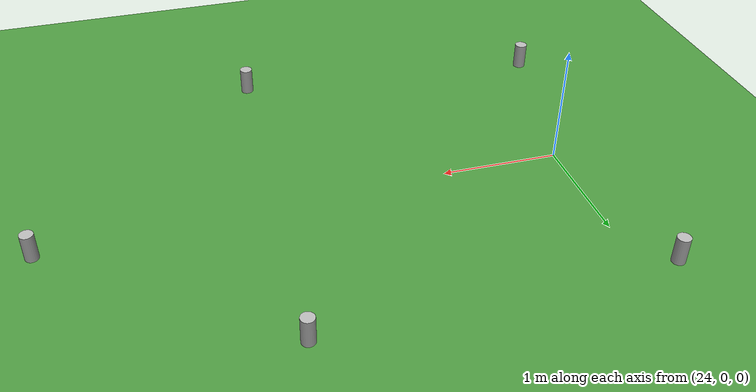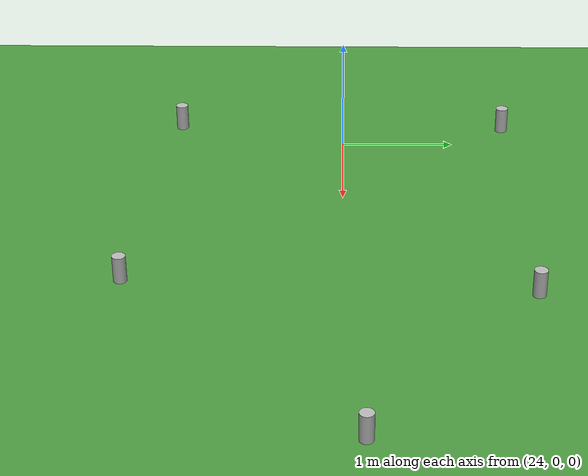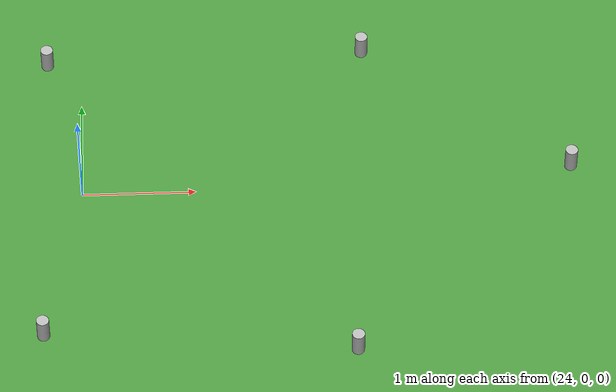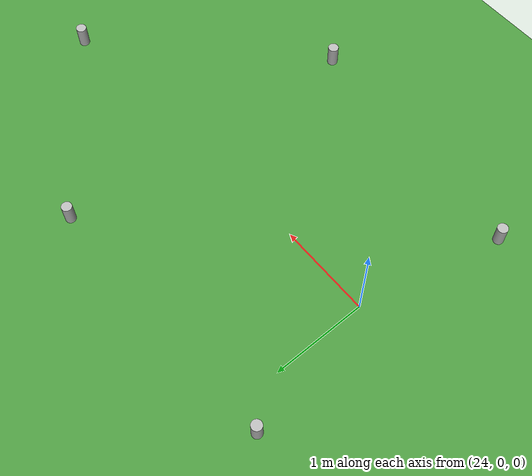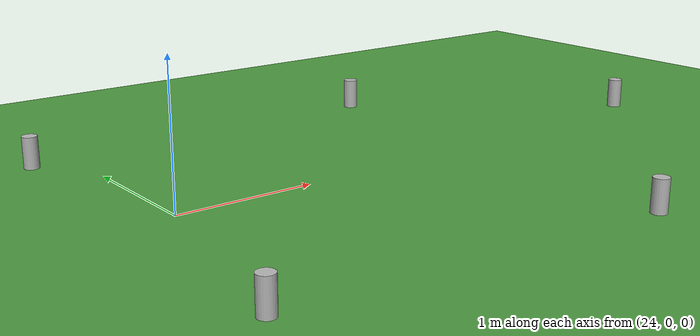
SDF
<sdf version="1.6">
 <world name="default">
  <wind><linear_velocity>11 11 0</linear_velocity></wind>
  <scene><shadows>0</shadows></scene>
  <physics type="ode">
   <ode>
    <solver><type>quick</type><iters>100</iters><sor>1.0</sor></solver>
    <constraints>
     <cfm>0.0</cfm>
     <erp>0.2</erp>
     <contact_max_correcting_vel>0.1</contact_max_correcting_vel>
     <contact_surface_layer>0.0</contact_surface_layer>
    </constraints>
   </ode>
   <real_time_update_rate>-1</real_time_update_rate>
  </physics>
  <gravity>0 0 -9.8</gravity>
  <include><uri>model://sun</uri></include>
  <model name="ground_plane">
   <static>true</static>
   <link name="link">
    <collision name="collision">
     <geometry><plane><normal>0 0 1</normal><size>5000 5000</size></plane></geometry>
     <surface><friction><ode><mu>100</mu><mu2>50</mu2></ode></friction></surface>
    </collision>
    <visual name="background">
     <pose>000 0 -.1 0 0 0</pose>
     <cast_shadows>false</cast_shadows>
     <geometry><plane><normal>0 0 1</normal><size>75 75</size></plane></geometry>
     <material>
      <script><uri>file://media/materials/scripts/gazebo.material</uri><name>Gazebo/Grass</name></script>
     </material>
    </visual>
    <visual name="qrcode1">
     <pose>0 0 .005 0 0 0</pose>
     <cast_shadows>false</cast_shadows>
     <geometry><plane><normal>0 0 1</normal><size>.4 .4</size></plane></geometry>
     <material>
      <script><uri>file://media/materials/scripts/gazebo2.material</uri><name>Gazebo/Aruco129</name></script>
     </material>
    </visual>
    <visual name="qrcode2">
     <pose>.2 -.5 .004 0 0 0</pose>
     <cast_shadows>false</cast_shadows>
     <geometry><plane><normal>0 0 1</normal><size>.2 .2</size></plane></geometry>
     <material>
      <script><uri>file://media/materials/scripts/gazebo.material</uri><name>Gazebo/Aruco72</name></script>
     </material>
    </visual>
    <visual name="qrcode3">
     <pose>25 0 .005 0 0 0</pose>
     <cast_shadows>false</cast_shadows>
     <geometry><plane><normal>0 0 1</normal><size>.4 .4</size></plane></geometry>
     <material>
      <script><uri>file://media/materials/scripts/gazebo2.material</uri><name>Gazebo/Aruco129</name></script>
     </material>
    </visual>
    <visual name="qrcode4">
     <pose>25 -.5 .004 0 0 0</pose>
     <cast_shadows>false</cast_shadows>
     <geometry><plane><normal>0 0 1</normal><size>.2 .2</size></plane></geometry>
     <material>
      <script><uri>file://media/materials/scripts/gazebo.material</uri><name>Gazebo/Aruco72</name></script>
     </material>
    </visual>
    <visual name="taco">
     <pose>22 0 .004 0 0 0</pose>
     <cast_shadows>false</cast_shadows>
     <geometry><plane><normal>0 0 1</normal><size>3 3</size></plane></geometry>
     <material>
      <script><uri>file://media/materials/scripts/gazebo2.material</uri><name>Gazebo/Taco</name></script>
     </material>
    </visual>
   </link>
  </model>
  <model name="beer">
   <link name="link">
    <pose>0 0 0.115 0 -0 0</pose>
    <inertial>
     <mass>0.39</mass>
     <inertia><ixx>0.00058</ixx><ixy>0</ixy><ixz>0</ixz><iyy>0.00058</iyy><iyz>0</iyz><izz>0.00019</izz></inertia>
    </inertial>
    <collision name="collision">
     <geometry><cylinder><radius>0.055</radius><length>0.23</length></cylinder></geometry>
    </collision>
    <visual name="visual">
     <geometry><cylinder><radius>0.055</radius><length>0.23</length></cylinder></geometry>
     <material>
      <script>
       <uri>model://beer/materials/scripts</uri>
       <uri>model://beer/materials/textures</uri>
       <name>Beer/Diffuse</name>
      </script>
     </material>
    </visual>
   </link>
   <pose>23.6936 1.48767 0 0 -0 0</pose>
  </model>
  <model name="beer_0">
   <link name="link">
    <pose>0 0 0.115 0 -0 0</pose>
    <inertial>
     <mass>0.39</mass>
     <inertia><ixx>0.00058</ixx><ixy>0</ixy><ixz>0</ixz><iyy>0.00058</iyy><iyz>0</iyz><izz>0.00019</izz></inertia>
    </inertial>
    <collision name="collision">
     <geometry><cylinder><radius>0.055</radius><length>0.23</length></cylinder></geometry>
    </collision>
    <visual name="visual">
     <geometry><cylinder><radius>0.055</radius><length>0.23</length></cylinder></geometry>
     <material>
      <script>
       <uri>model://beer/materials/scripts</uri>
       <uri>model://beer/materials/textures</uri>
       <name>Beer/Diffuse</name>
      </script>
     </material>
    </visual>
   </link>
   <pose>26.5318 1.53642 0 0 -0 0</pose>
  </model>
  <model name="beer_1">
   <link name="link">
    <pose>0 0 0.115 0 -0 0</pose>
    <inertial>
     <mass>0.39</mass>
     <inertia><ixx>0.00058</ixx><ixy>0</ixy><ixz>0</ixz><iyy>0.00058</iyy><iyz>0</iyz><izz>0.00019</izz></inertia>
    </inertial>
    <collision name="collision">
     <geometry><cylinder><radius>0.055</radius><length>0.23</length></cylinder></geometry>
    </collision>
    <visual name="visual">
     <geometry><cylinder><radius>0.055</radius><length>0.23</length></cylinder></geometry>
     <material>
      <script>
       <uri>model://beer/materials/scripts</uri>
       <uri>model://beer/materials/textures</uri>
       <name>Beer/Diffuse</name>
      </script>
     </material>
    </visual>
   </link>
   <pose>26.3557 -1.7609 0 0 -0 0</pose>
  </model>
  <model name="beer_2">
   <link name="link">
    <pose>0 0 0.115 0 -0 0</pose>
    <inertial>
     <mass>0.39</mass>
     <inertia><ixx>0.00058</ixx><ixy>0</ixy><ixz>0</ixz><iyy>0.00058</iyy><iyz>0</iyz><izz>0.00019</izz></inertia>
    </inertial>
    <collision name="collision">
     <geometry><cylinder><radius>0.055</radius><length>0.23</length></cylinder></geometry>
    </collision>
    <visual name="visual">
     <geometry><cylinder><radius>0.055</radius><length>0.23</length></cylinder></geometry>
     <material>
      <script>
       <uri>model://beer/materials/scripts</uri>
       <uri>model://beer/materials/textures</uri>
       <name>Beer/Diffuse</name>
      </script>
     </material>
    </visual>
   </link>
   <pose>23.659 -1.51576 0 0 -0 0</pose>
  </model>
  <model name="beer_3">
   <link name="link">
    <pose>0 0 0.115 0 -0 0</pose>
    <inertial>
     <mass>0.39</mass>
     <inertia><ixx>0.00058</ixx><ixy>0</ixy><ixz>0</ixz><iyy>0.00058</iyy><iyz>0</iyz><izz>0.00019</izz></inertia>
    </inertial>
    <collision name="collision">
     <geometry><cylinder><radius>0.055</radius><length>0.23</length></cylinder></geometry>
    </collision>
    <visual name="visual">
     <geometry><cylinder><radius>0.055</radius><length>0.23</length></cylinder></geometry>
     <material>
      <script>
       <uri>model://beer/materials/scripts</uri>
       <uri>model://beer/materials/textures</uri>
       <name>Beer/Diffuse</name>
      </script>
     </material>
    </visual>
   </link>
   <pose>28.3307 0.165699 0 0 -0 0</pose>
  </model>
 </world>
</sdf>
